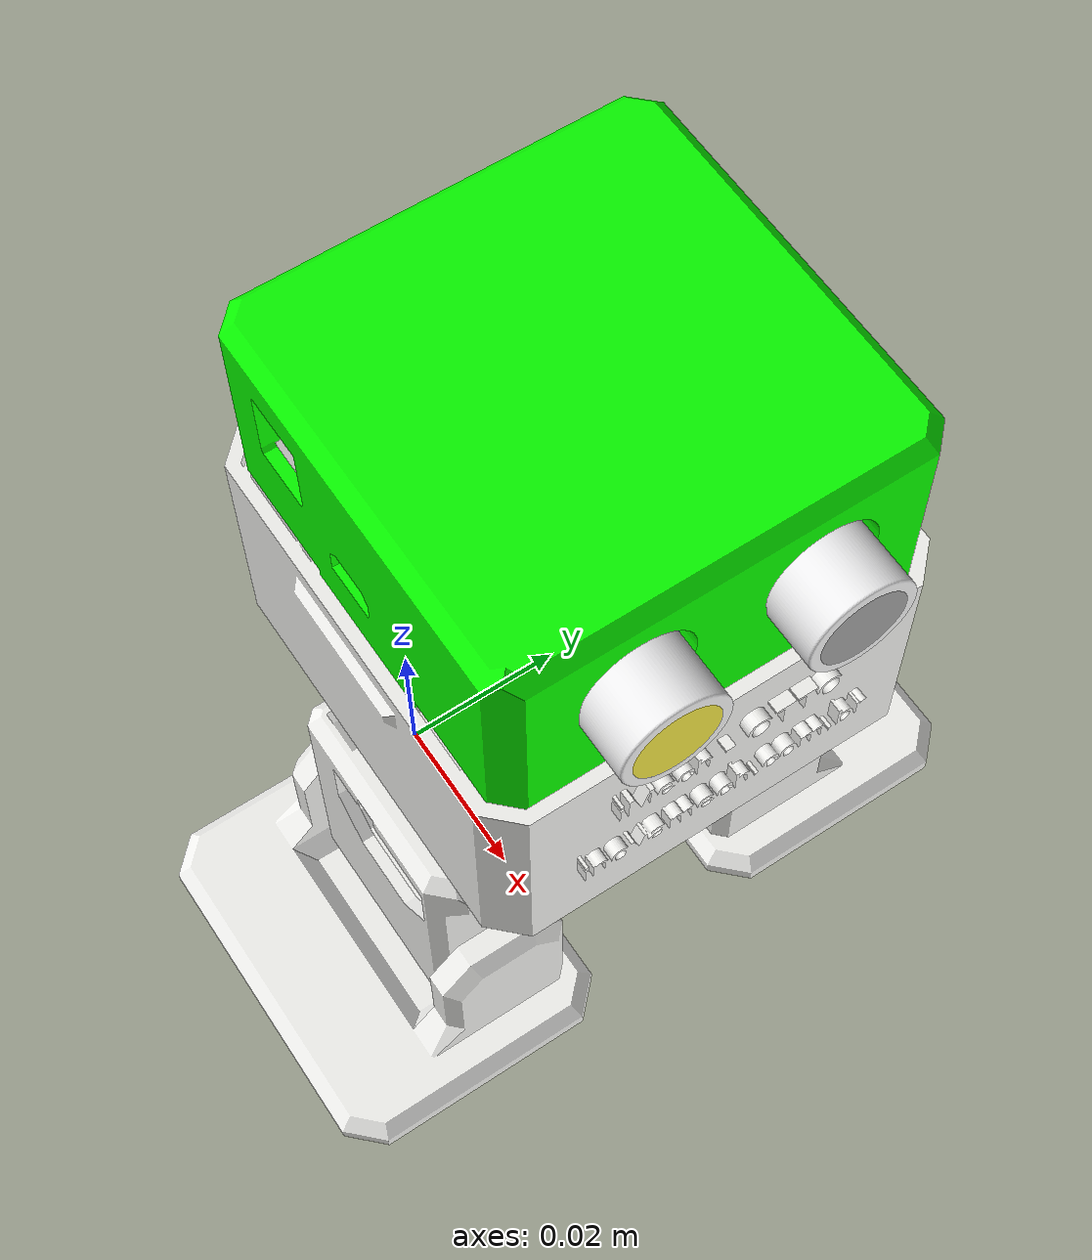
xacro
<?xml version='1.0' encoding='utf-8'?>
<robot xmlns:xacro="http://www.ros.org/wiki/xacro" name="otto">
   <xacro:include filename="$(find otto)/urdf/materials.xacro" />

   <!-- ==================== LINKS ==================== -->

   <link name="base_link">
      <inertial>
         <origin xyz="-0.017480908878091606 0.03519882134873651 -0.025083002755304264" rpy="0.0 0.0 0.0" />
         <mass value="0.03208248801839897" />
         <inertia ixx="2.49503e-05" iyy="2.55347e-05" izz="4.0534700000000003e-05" ixy="1.7290000000000002e-07" iyz="7.21e-08" ixz="-2.4710000000000004e-07" />
      </inertial>
      <visual>
         <origin xyz="0.0 0.0 -0.09000000000000001" rpy="0.0 0.0 0.0" />
         <geometry>
            <mesh filename="package://otto/meshes/base_link_1.stl" scale="0.001 0.001 0.001" />
         </geometry>
         <material name="ABS{Branco}" />
      </visual>
      <collision>
         <origin xyz="0.0 0.0 -0.09000000000000001" rpy="0.0 0.0 0.0" />
         <geometry>
            <mesh filename="package://otto/meshes/base_link_1.stl" scale="0.001 0.001 0.001" />
         </geometry>
      </collision>
   </link>

   <link name="RightLeg_1">
      <inertial>
         <origin xyz="-1.0223024729112406e-05 0.0 -0.01867704290601307" rpy="0.0 0.0 0.0" />
         <mass value="0.008348175211097226" />
         <inertia ixx="1.7007e-06" iyy="2.6586e-06" izz="1.5726e-06" ixy="-0.0" iyz="-0.0" ixz="1.2080000000000002e-07" />
      </inertial>
      <visual>
         <origin xyz="0.012391174437753782 -0.005158205912836666 -0.051000000000000004" rpy="0.0 0.0 0.0" />
         <geometry>
            <mesh filename="package://otto/meshes/RightLeg_1.stl" scale="0.001 0.001 0.001" />
         </geometry>
         <material name="ABS{Branco}" />
      </visual>
      <collision>
         <origin xyz="0.012391174437753782 -0.005158205912836666 -0.051000000000000004" rpy="0.0 0.0 0.0" />
         <geometry>
            <mesh filename="package://otto/meshes/RightLeg_1.stl" scale="0.001 0.001 0.001" />
         </geometry>
      </collision>
   </link>

   <link name="LeftLeg_1">
      <inertial>
         <origin xyz="8.637669678136283e-05 0.0 -0.018540132277720875" rpy="0.0 0.0 0.0" />
         <mass value="0.008295768110971862" />
         <inertia ixx="1.6731e-06" iyy="2.6214e-06" izz="1.5575000000000001e-06" ixy="0.0" iyz="0.0" ixz="1.383e-07" />
      </inertial>
      <visual>
         <origin xyz="0.016999572875253794 -0.0610004271247462 -0.053000000000000005" rpy="0.0 0.0 0.0" />
         <geometry>
            <mesh filename="package://otto/meshes/LeftLeg_1.stl" scale="0.001 0.001 0.001" />
         </geometry>
         <material name="ABS{Branco}" />
      </visual>
      <collision>
         <origin xyz="0.016999572875253794 -0.0610004271247462 -0.053000000000000005" rpy="0.0 0.0 0.0" />
         <geometry>
            <mesh filename="package://otto/meshes/LeftLeg_1.stl" scale="0.001 0.001 0.001" />
         </geometry>
      </collision>
   </link>

   <link name="Ultrasonic_Sensor_v1_1_1">
      <inertial>
         <origin xyz="0.015667100965246424 0.035094427086301554 0.015158230340085038" rpy="0.0 0.0 0.0" />
         <mass value="0.044351271100452234" />
         <inertia ixx="9.202000000000001e-06" iyy="1.6735000000000002e-06" izz="8.9476e-06" ixy="-0.0" iyz="1.21e-08" ixz="-9.1e-09" />
      </inertial>
      <visual>
         <origin xyz="0.0 0.0 -0.09000000000000001" rpy="0.0 0.0 0.0" />
         <geometry>
            <mesh filename="package://otto/meshes/Ultrasonic_Sensor_v1_1_1__Corpo1.stl" scale="0.001 0.001 0.001" />
         </geometry>
         <material name="Opaque{20,22,159}" />
      </visual>
      <visual>
         <origin xyz="0.0 0.0 -0.09000000000000001" rpy="0.0 0.0 0.0" />
         <geometry>
            <mesh filename="package://otto/meshes/Ultrasonic_Sensor_v1_1_1__Corpo2.stl" scale="0.001 0.001 0.001" />
         </geometry>
         <material name="Alumínio_Polido" />
      </visual>
      <visual>
         <origin xyz="0.0 0.0 -0.09000000000000001" rpy="0.0 0.0 0.0" />
         <geometry>
            <mesh filename="package://otto/meshes/Ultrasonic_Sensor_v1_1_1__Corpo3.stl" scale="0.001 0.001 0.001" />
         </geometry>
         <material name="Alumínio_Polido" />
      </visual>
      <visual>
         <origin xyz="0.0 0.0 -0.09000000000000001" rpy="0.0 0.0 0.0" />
         <geometry>
            <mesh filename="package://otto/meshes/Ultrasonic_Sensor_v1_1_1__Corpo4.stl" scale="0.001 0.001 0.001" />
         </geometry>
         <material name="Aço_Acetinado" />
      </visual>
      <visual>
         <origin xyz="0.0 0.0 -0.09000000000000001" rpy="0.0 0.0 0.0" />
         <geometry>
            <mesh filename="package://otto/meshes/Ultrasonic_Sensor_v1_1_1__Corpo5.stl" scale="0.001 0.001 0.001" />
         </geometry>
         <material name="Alumínio_Anodizadobruto{Cinza}" />
      </visual>
      <visual>
         <origin xyz="0.0 0.0 -0.09000000000000001" rpy="0.0 0.0 0.0" />
         <geometry>
            <mesh filename="package://otto/meshes/Ultrasonic_Sensor_v1_1_1__Corpo6.stl" scale="0.001 0.001 0.001" />
         </geometry>
         <material name="Aço_Acetinado" />
      </visual>
      <visual>
         <origin xyz="0.0 0.0 -0.09000000000000001" rpy="0.0 0.0 0.0" />
         <geometry>
            <mesh filename="package://otto/meshes/Ultrasonic_Sensor_v1_1_1__Corpo7.stl" scale="0.001 0.001 0.001" />
         </geometry>
         <material name="Aço_Acetinado" />
      </visual>
      <visual>
         <origin xyz="0.0 0.0 -0.09000000000000001" rpy="0.0 0.0 0.0" />
         <geometry>
            <mesh filename="package://otto/meshes/Ultrasonic_Sensor_v1_1_1__Corpo8.stl" scale="0.001 0.001 0.001" />
         </geometry>
         <material name="Aço_Acetinado" />
      </visual>
      <visual>
         <origin xyz="0.0 0.0 -0.09000000000000001" rpy="0.0 0.0 0.0" />
         <geometry>
            <mesh filename="package://otto/meshes/Ultrasonic_Sensor_v1_1_1__Corpo9.stl" scale="0.001 0.001 0.001" />
         </geometry>
         <material name="Alumínio_Anodizadobruto{Cinza}" />
      </visual>
      <visual>
         <origin xyz="0.0 0.0 -0.09000000000000001" rpy="0.0 0.0 0.0" />
         <geometry>
            <mesh filename="package://otto/meshes/Ultrasonic_Sensor_v1_1_1__Corpo10.stl" scale="0.001 0.001 0.001" />
         </geometry>
         <material name="Aço_Acetinado" />
      </visual>
      <visual>
         <origin xyz="0.0 0.0 -0.09000000000000001" rpy="0.0 0.0 0.0" />
         <geometry>
            <mesh filename="package://otto/meshes/Ultrasonic_Sensor_v1_1_1__Corpo11.stl" scale="0.001 0.001 0.001" />
         </geometry>
         <material name="Aço_Acetinado" />
      </visual>
      <visual>
         <origin xyz="0.0 0.0 -0.09000000000000001" rpy="0.0 0.0 0.0" />
         <geometry>
            <mesh filename="package://otto/meshes/Ultrasonic_Sensor_v1_1_1__Corpo12.stl" scale="0.001 0.001 0.001" />
         </geometry>
         <material name="Materialdebase–Transparente" />
      </visual>
      <visual>
         <origin xyz="0.0 0.0 -0.09000000000000001" rpy="0.0 0.0 0.0" />
         <geometry>
            <mesh filename="package://otto/meshes/Ultrasonic_Sensor_v1_1_1__Corpo13.stl" scale="0.001 0.001 0.001" />
         </geometry>
         <material name="Alumínio_Polido" />
      </visual>
      <visual>
         <origin xyz="0.0 0.0 -0.09000000000000001" rpy="0.0 0.0 0.0" />
         <geometry>
            <mesh filename="package://otto/meshes/Ultrasonic_Sensor_v1_1_1__Corpo14.stl" scale="0.001 0.001 0.001" />
         </geometry>
         <material name="Alumínio_Polido" />
      </visual>
      <collision>
         <origin xyz="0.0 0.0 -0.09000000000000001" rpy="0.0 0.0 0.0" />
         <geometry>
            <mesh filename="package://otto/meshes/Ultrasonic_Sensor_v1_1_1.stl" scale="0.001 0.001 0.001" />
         </geometry>
      </collision>
   </link>

   <link name="Head_1_1">
      <inertial>
         <origin xyz="-0.017855193601269966 0.03577461405901634 0.019109172286024715" rpy="0.0 0.0 0.0" />
         <mass value="0.024198404764366552" />
         <inertia ixx="1.64375e-05" iyy="1.5669500000000003e-05" izz="2.6288000000000003e-05" ixy="2.7180000000000004e-07" iyz="8.04e-08" ixz="9.079999999999999e-08" />
      </inertial>
      <visual>
         <origin xyz="-0.00011642897127503943 -6.011660760120062e-07 -0.08903341742506664" rpy="0.0 0.0 0.0" />
         <geometry>
            <mesh filename="package://otto/meshes/Head_1_1.stl" scale="0.001 0.001 0.001" />
         </geometry>
         <material name="Plástico_Fosco{Amarelo}" />
      </visual>
      <collision>
         <origin xyz="-0.00011642897127503943 -6.011660760120062e-07 -0.08903341742506664" rpy="0.0 0.0 0.0" />
         <geometry>
            <mesh filename="package://otto/meshes/Head_1_1.stl" scale="0.001 0.001 0.001" />
         </geometry>
      </collision>
   </link>

   <link name="FootRight_1">
      <inertial>
         <origin xyz="-0.01692768844509787 -0.0076979010066632785 -0.010195669876470142" rpy="0.0 0.0 0.0" />
         <mass value="0.012749332366692664" />
         <inertia ixx="2.4864e-06" iyy="5.3642e-06" izz="6.5881000000000005e-06" ixy="-7.58e-08" iyz="-4.0549999999999997e-07" ixz="-6.1e-08" />
      </inertial>
      <visual>
         <origin xyz="-0.005508825562246209 -0.005158205912836655 -0.02" rpy="0.0 0.0 0.0" />
         <geometry>
            <mesh filename="package://otto/meshes/FootRight_1.stl" scale="0.001 0.001 0.001" />
         </geometry>
         <material name="ABS{Branco}" />
      </visual>
      <collision>
         <origin xyz="-0.005508825562246209 -0.005158205912836655 -0.02" rpy="0.0 0.0 0.0" />
         <geometry>
            <mesh filename="package://otto/meshes/FootRight_1.stl" scale="0.001 0.001 0.001" />
         </geometry>
      </collision>
   </link>

   <link name="FootLeft_1">
      <inertial>
         <origin xyz="-0.016928050017156856 0.004599559866878043 -0.012894741270675017" rpy="0.0 0.0 0.0" />
         <mass value="0.012746842677145294" />
         <inertia ixx="2.4861000000000002e-06" iyy="5.3642e-06" izz="6.587899999999999e-06" ixy="7.58e-08" iyz="4.056e-07" ixz="-6.1e-08" />
      </inertial>
      <visual>
         <origin xyz="-0.0005004271247461972 -0.06100042712474619 -0.022000000000000002" rpy="0.0 0.0 0.0" />
         <geometry>
            <mesh filename="package://otto/meshes/FootLeft_1.stl" scale="0.001 0.001 0.001" />
         </geometry>
         <material name="ABS{Branco}" />
      </visual>
      <collision>
         <origin xyz="-0.0005004271247461972 -0.06100042712474619 -0.022000000000000002" rpy="0.0 0.0 0.0" />
         <geometry>
            <mesh filename="package://otto/meshes/FootLeft_1.stl" scale="0.001 0.001 0.001" />
         </geometry>
      </collision>
   </link>

   <!-- ==================== JOINTS ==================== -->

   <joint name="leg_right_joint" type="revolute">
      <origin xyz="-0.012391174437753782 0.005158205912836682 -0.039" rpy="0.0 0.0 0.0" />
      <parent link="base_link" />
      <child link="RightLeg_1" />
      <axis xyz="0.0 0.0 1.0" />
      <limit upper="1.5707963267948966" lower="-1.5707963267948966" effort="100.0" velocity="100.0" />
   </joint>

   <joint name="leg_left_joint" type="revolute">
      <origin xyz="-0.016999572875253794 0.061000427124746216 -0.037000000000000005" rpy="0.0 0.0 0.0" />
      <parent link="base_link" />
      <child link="LeftLeg_1" />
      <axis xyz="0.0 0.0 -1.0" />
      <limit upper="1.5707963267948966" lower="-1.5707963267948966" effort="100.0" velocity="100.0" />
   </joint>

   <joint name="ultrasonic_joint" type="fixed">
      <origin xyz="0.0 0.0 0.0" rpy="0.0 0.0 0.0" />
      <parent link="base_link" />
      <child link="Ultrasonic_Sensor_v1_1_1" />
   </joint>

   <joint name="head_joint" type="fixed">
      <origin xyz="0.00011642897127504436 6.011660760218973e-07 -0.0009665825749333657" rpy="0.0 0.0 0.0" />
      <parent link="base_link" />
      <child link="Head_1_1" />
   </joint>

   <joint name="foot_right_joint" type="revolute">
      <origin xyz="0.0179 0.0 -0.031" rpy="0.0 0.0 0.0" />
      <parent link="RightLeg_1" />
      <child link="FootRight_1" />
      <axis xyz="1.0 0.0 0.0" />
      <limit upper="1.5707963267948966" lower="-1.5707963267948966" effort="100.0" velocity="100.0" />
   </joint>

   <joint name="foot_left_joint" type="revolute">
      <origin xyz="0.0175 0.0 -0.031" rpy="0.0 0.0 0.0" />
      <parent link="LeftLeg_1" />
      <child link="FootLeft_1" />
      <axis xyz="1.0 0.0 0.0" />
      <limit upper="1.5707963267948966" lower="-1.5707963267948966" effort="100.0" velocity="100.0" />
   </joint>

      <!-- Plugin Gazebo para cada junta -->
   <gazebo>
      <plugin filename="gz-sim-joint-position-controller-system"
               name="gz::sim::systems::JointPositionController">
         <joint_name>leg_right_joint</joint_name>
         <topic>/leg_right_joint/cmd</topic>
         <p_gain>1</p_gain>
         <i_gain>0</i_gain>
         <d_gain>1.0</d_gain>
      </plugin>
      <plugin filename="gz-sim-joint-position-controller-system"
               name="gz::sim::systems::JointPositionController">
         <joint_name>leg_left_joint</joint_name>
         <topic>/leg_left_joint/cmd</topic>
         <p_gain>1</p_gain>
         <i_gain>0</i_gain>
         <d_gain>1.0</d_gain>
      </plugin>
      <plugin filename="gz-sim-joint-position-controller-system"
               name="gz::sim::systems::JointPositionController">
         <joint_name>foot_right_joint</joint_name>
         <topic>/foot_right_joint/cmd</topic>
         <p_gain>1</p_gain>
         <i_gain>0</i_gain>
         <d_gain>1.0</d_gain>
      </plugin>
      <plugin filename="gz-sim-joint-position-controller-system"
               name="gz::sim::systems::JointPositionController">
         <joint_name>foot_left_joint</joint_name>
         <topic>/foot_left_joint/cmd</topic>
         <p_gain>1</p_gain>
         <i_gain>0</i_gain>
         <d_gain>1.0</d_gain>
      </plugin>
   </gazebo>

</robot>

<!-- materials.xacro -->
<robot name="otto" xmlns:xacro="http://www.ros.org/wiki/xacro">
   <material name="silver_default">
      <color rgba="0.700 0.700 0.700 1.000" />
   </material>
   <material name="ABS{Branco}">
      <color rgba="0.9647058823529412 0.9647058823529412 0.9529411764705882 1.0" />
   </material>
   <material name="Plástico_Fosco{Amarelo}">
      <color rgba="0.03529411764705882 1.0 0.0 1.0" />
   </material>
   <material name="Opaque{20,22,159}">
      <color rgba="0.0784313725490196 0.08627450980392157 0.6235294117647059 1.0" />
   </material>
   <material name="Alumínio_Polido">
      <color rgba="0.9607843137254902 0.9607843137254902 0.9647058823529412 1.0" />
   </material>
   <material name="Aço_Acetinado">
      <color rgba="0.6274509803921569 0.6274509803921569 0.6274509803921569 1.0" />
   </material>
   <material name="Alumínio_Anodizadobruto{Cinza}">
      <color rgba="0.5372549019607843 0.5372549019607843 0.5372549019607843 1.0" />
   </material>
   <material name="Materialdebase-Transparente">
      <color rgba="1.0 1.0 1.0 1.0" />
   </material>
</robot>
